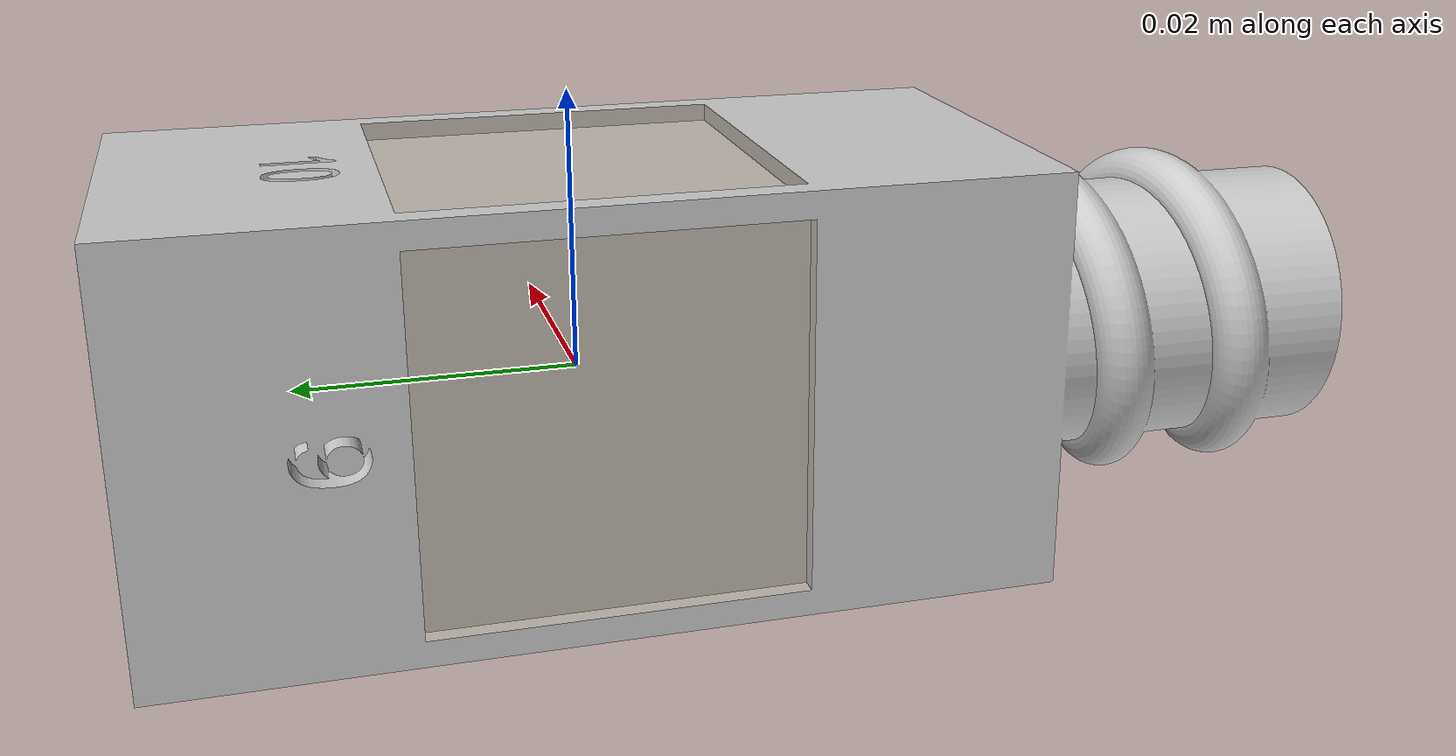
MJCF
<mujoco model="square_table_leg1">
  <default>
    <default class="square_table_leg1_visual">
      <geom group="2" type="mesh" contype="0" conaffinity="0"/>
    </default>
    <default class="square_table_leg1_collision">
      <geom group="3" type="mesh" solref="0.01 1" solimp=".95 .99 .0001" friction="0.5"/>
    </default>
  </default>
  <asset>
    <texture type="2d" name="tag36_11_00008" file="tag36_11_00008.png"/>
    <material name="square_table_leg1_Material.001" texture="tag36_11_00008" specular="0.5" shininess="0.25"/>
    <texture type="2d" name="tag36_11_00009" file="tag36_11_00009.png"/>
    <material name="square_table_leg1_Material.002" texture="tag36_11_00009" specular="0.5" shininess="0.25"/>
    <texture type="2d" name="tag36_11_00010" file="tag36_11_00010.png"/>
    <material name="square_table_leg1_Material.003" texture="tag36_11_00010" specular="0.5" shininess="0.25"/>
    <texture type="2d" name="tag36_11_00011" file="tag36_11_00011.png"/>
    <material name="square_table_leg1_Material.004" texture="tag36_11_00011" specular="0.5" shininess="0.25"/>
    <material name="square_table_leg1_Material.005" specular="0.5" shininess="0.25" rgba="0.800000 0.800000 0.800000 1.000000"/>
    <mesh file="square_table_leg1_0.obj"/>
    <mesh file="square_table_leg1_1.obj"/>
    <mesh file="square_table_leg1_2.obj"/>
    <mesh file="square_table_leg1_3.obj"/>
    <mesh file="square_table_leg1_4.obj"/>
  </asset>
  <worldbody>
    <body name="square_table_leg1">
      <freejoint/>
      <geom mesh="square_table_leg1_0" material="square_table_leg1_Material.004" class="square_table_leg1_visual"/>
      <geom mesh="square_table_leg1_1" material="square_table_leg1_Material.003" class="square_table_leg1_visual"/>
      <geom mesh="square_table_leg1_2" material="square_table_leg1_Material.002" class="square_table_leg1_visual"/>
      <geom mesh="square_table_leg1_3" material="square_table_leg1_Material.001" class="square_table_leg1_visual"/>
      <geom mesh="square_table_leg1_4" material="square_table_leg1_Material.005" class="square_table_leg1_visual"/>
      <geom mesh="square_table_leg1_0" type="sdf" class="square_table_leg1_collision"/>
      <geom mesh="square_table_leg1_1" type="sdf" class="square_table_leg1_collision"/>
      <geom mesh="square_table_leg1_2" type="sdf" class="square_table_leg1_collision"/>
      <geom mesh="square_table_leg1_3" type="sdf" class="square_table_leg1_collision"/>
      <geom mesh="square_table_leg1_4" type="sdf" class="square_table_leg1_collision"/>
    </body>
  </worldbody>
</mujoco>
